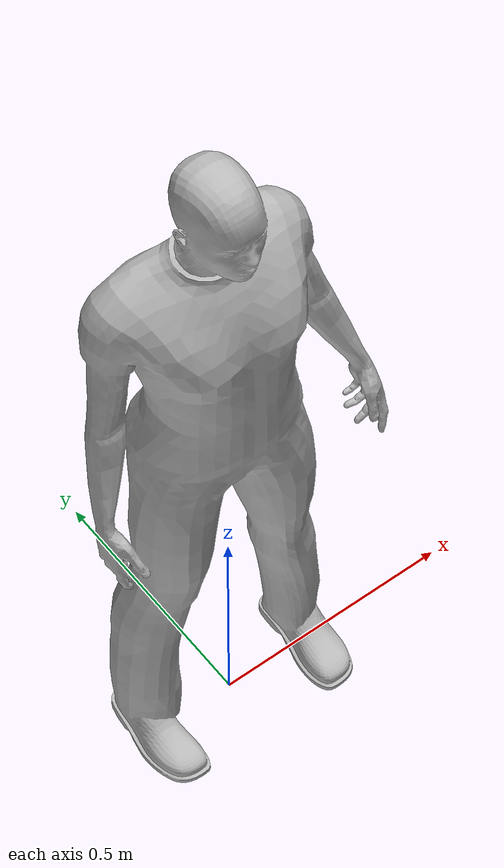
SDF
<?xml version="1.0" ?>
<sdf version="1.6">
  <model name="clf_actor">
    <static>true</static>
    <link name="link">
      <collision name="collision">
        <geometry>
          <mesh>
            <uri>model://clf_actor/meshes/clf_actor.dae</uri>
          </mesh>
        </geometry>
      </collision>
      <visual name="visual">
        <geometry>
          <mesh>
            <uri>model://clf_actor/meshes/clf_actor.dae</uri>
          </mesh>
        </geometry>
      </visual>
    </link>
  </model>
</sdf>
